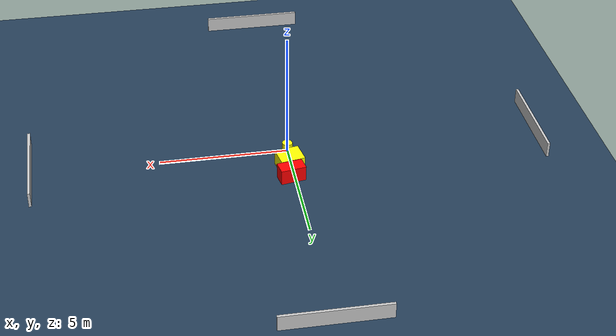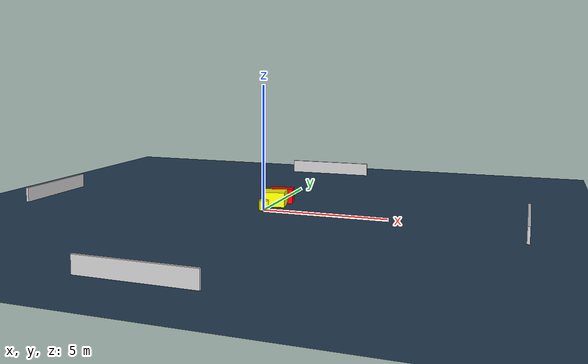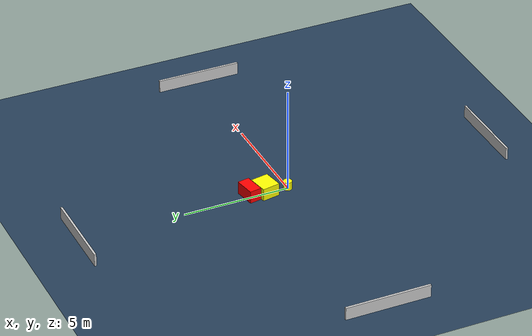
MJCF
<?xml version="1.0" ?>
<mujoco model="generated_environment">
  <option timestep="0.01" integrator="RK4" cone="elliptic"/>
  <default>
    <geom density="1"/>
  </default>
  <asset>
    <texture builtin="gradient" height="3072" name="skybox" rgb1="0.3 0.5 0.7" rgb2="0 0 0" type="skybox" width="512"/>
    <texture builtin="checker" height="300" name="groundplane" rgb1="0.2 0.3 0.4" rgb2="0.1 0.2 0.3" type="2d" width="300"/>
    <material name="groundplane" reflectance="0.2" texrepeat="5 5" texture="groundplane"/>
  </asset>
  <worldbody>
    <light dir="0 0 -1" directional="true" pos="0 0 1.5"/>
    <geom condim="3" friction="0.5 0.005 0.001" material="groundplane" name="floor" pos="0 0 0" size="0 0 0.05" type="plane"/>
    <body name="walls">
      <geom name="wall_1" condim="4" pos="-10.0 0.0 0.3" rgba="0.800000011920929 0.800000011920929 0.800000011920929 1.0" size="0.05 2.0 0.3" type="box"/>
      <geom name="wall_2" condim="4" pos="10.0 0.0 0.3" rgba="0.800000011920929 0.800000011920929 0.800000011920929 1.0" size="0.05 2.0 0.3" type="box"/>
      <geom name="wall_3" condim="4" pos="0.0 -10.0 0.3" rgba="0.800000011920929 0.800000011920929 0.800000011920929 1.0" size="2.0 0.05 0.3" type="box"/>
      <geom name="wall_4" condim="4" pos="0.0 10.0 0.3" rgba="0.800000011920929 0.800000011920929 0.800000011920929 1.0" size="2.0 0.05 0.3" type="box"/>
    </body>
    <body name="robot">
      <joint name="joint_x" type="slide" pos="0 0 0" axis="1 0 0"/>
      <joint name="joint_y" type="slide" pos="0 0 0" axis="0 1 0"/>
      <geom name="robot" type="cylinder" pos="0.0 0.0 0.2" size="0.2 0.2 0.0" mass="5.0" friction="1.0 0.005 0.0001" condim="4" rgba="1.0 1.0 0.0 1.0"/>
    </body>
    <body name="obstacle_1_movable">
      <geom name="obstacle_1_movable" condim="4" pos="0.07652551353779918 1.062758854867922 0.3" euler="0 0 190.29670316148375" friction="0.0 0.005 0.001" rgba="1.0 1.0 0.0 1.0" size="0.47698093389408786 0.42483648870055374 0.3" type="box" mass="0.1"/>
      <joint type="free"/>
    </body>
    <body name="obstacle_2_static">
      <geom name="obstacle_2_static" condim="4" pos="0.13312874282632198 1.8061161337026217 0.3" euler="0 0 10.00248436924721" friction="0.0 0.005 0.001" rgba="1.0 0.0 0.0 1.0" size="0.49550992658585985 0.2811745558367166 0.3" type="box"/>
    </body>
  </worldbody>
  <actuator>
    <motor name="actuator_x" joint="joint_x" gear="1" ctrlrange="-1 1"/>
    <motor name="actuator_y" joint="joint_y" gear="1" ctrlrange="-1 1"/>
  </actuator>
</mujoco>
